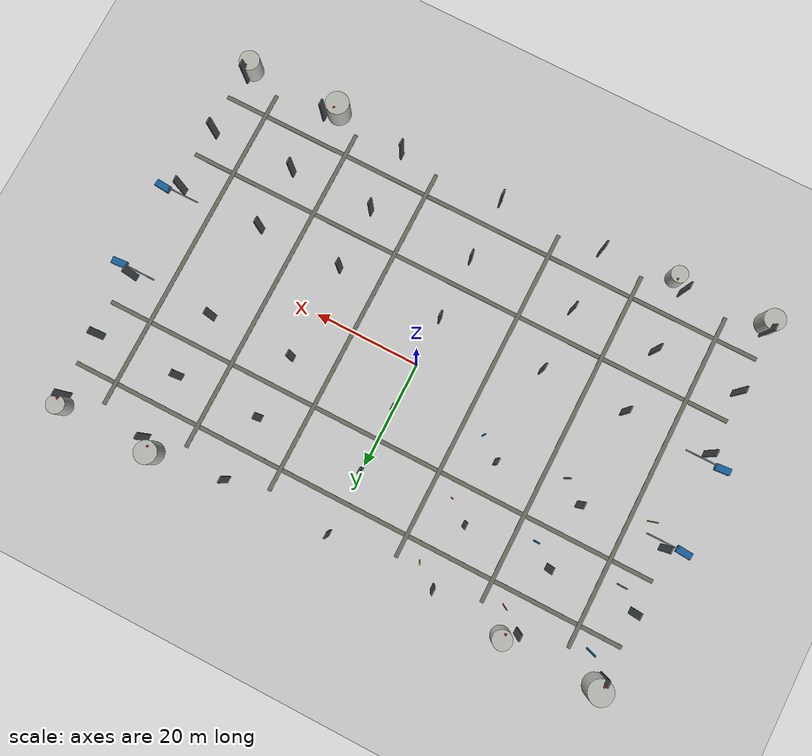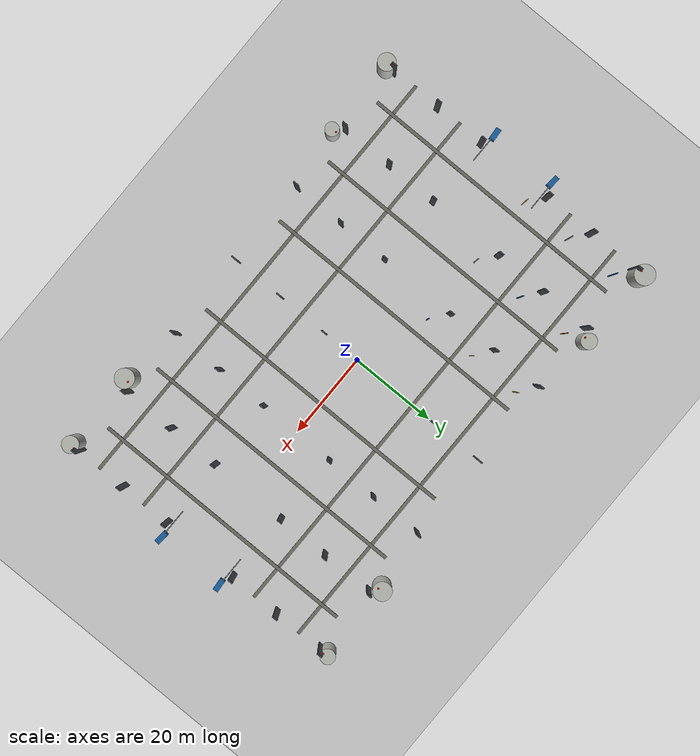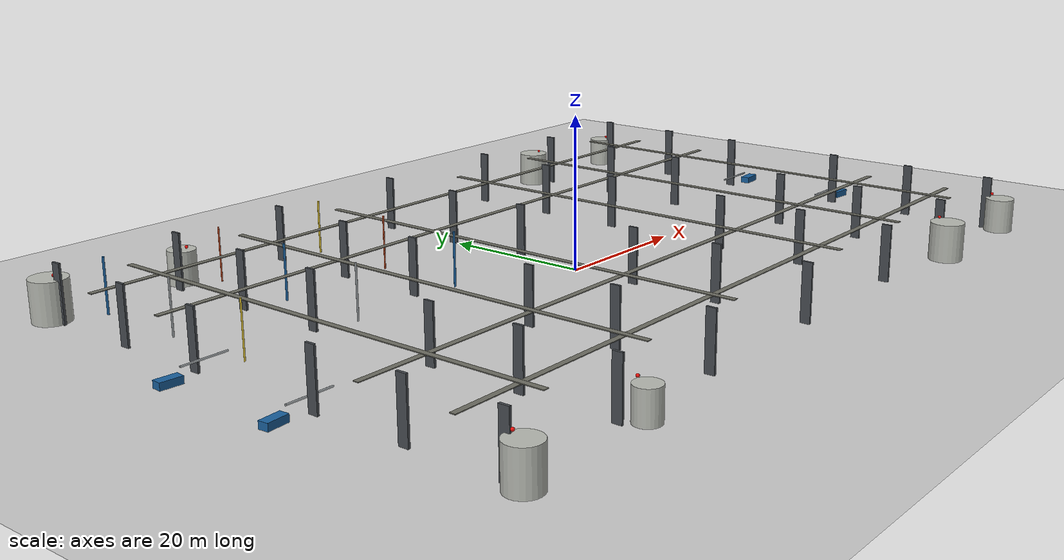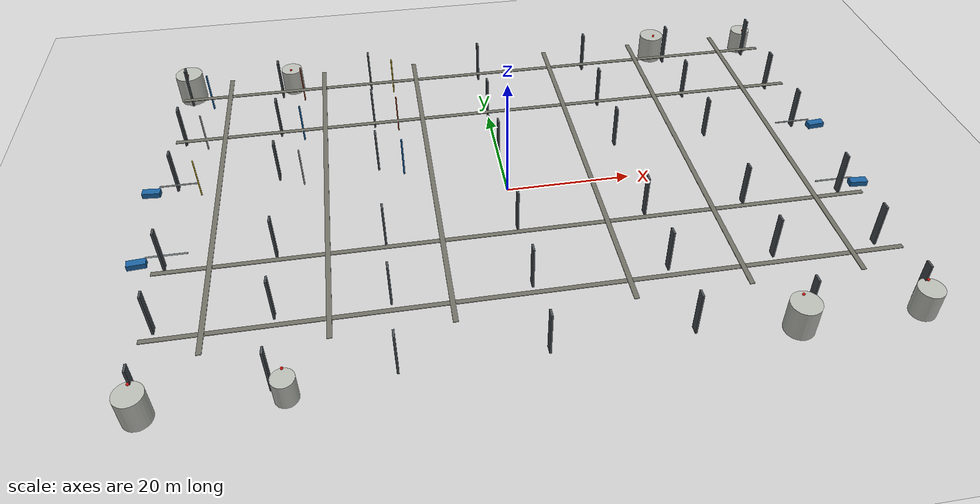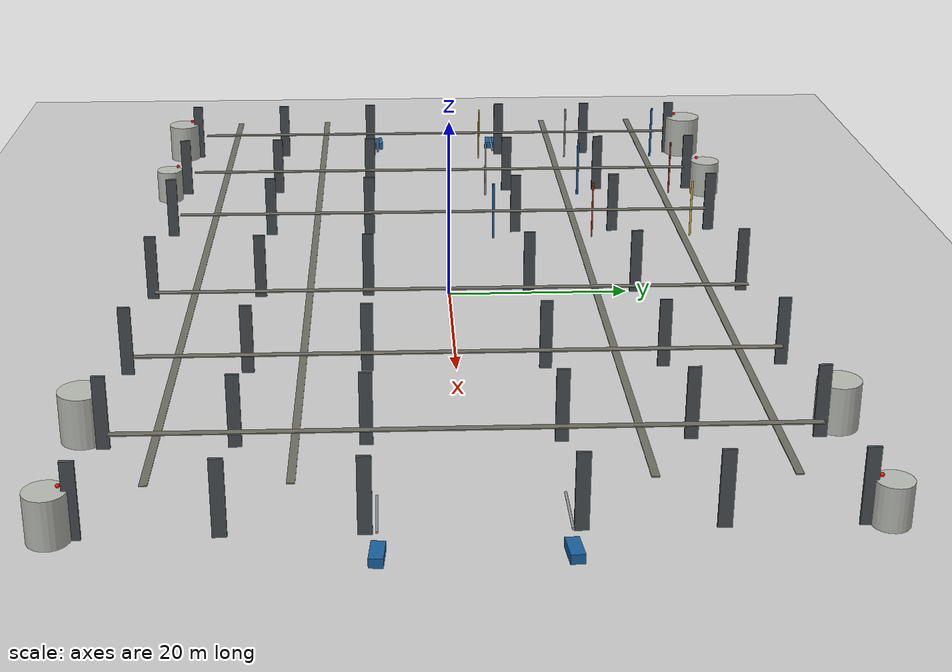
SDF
<sdf version="1.6">
 <world name="default">
  <include><uri>model://sun</uri></include>
  <include><uri>model://ground_plane</uri></include>
  <model name="dense_interwoven_pipe_grid">
   <static>true</static>
   <link name="riser_00_03">
    <pose>-48.0 6.0 4.15 0 0 0</pose>
    <collision name="collision">
     <geometry><cylinder><radius>0.100</radius><length>6.90</length></cylinder></geometry>
    </collision>
    <visual name="visual">
     <geometry><cylinder><radius>0.100</radius><length>6.90</length></cylinder></geometry>
     <material><ambient>0.48 0.42 0.12 1</ambient><diffuse>0.86 0.75 0.20 1</diffuse></material>
    </visual>
   </link>
   <link name="riser_00_04">
    <pose>-48.0 18.0 4.15 0 0 0</pose>
    <collision name="collision">
     <geometry><cylinder><radius>0.120</radius><length>6.90</length></cylinder></geometry>
    </collision>
    <visual name="visual">
     <geometry><cylinder><radius>0.120</radius><length>6.90</length></cylinder></geometry>
     <material><ambient>0.34 0.35 0.36 1</ambient><diffuse>0.58 0.60 0.61 1</diffuse></material>
    </visual>
   </link>
   <link name="riser_00_05">
    <pose>-48.0 30.0 4.15 0 0 0</pose>
    <collision name="collision">
     <geometry><cylinder><radius>0.140</radius><length>6.90</length></cylinder></geometry>
    </collision>
    <visual name="visual">
     <geometry><cylinder><radius>0.140</radius><length>6.90</length></cylinder></geometry>
     <material><ambient>0.05 0.22 0.36 1</ambient><diffuse>0.10 0.38 0.62 1</diffuse></material>
    </visual>
   </link>
   <link name="riser_01_03">
    <pose>-32.0 6.0 4.15 0 0 0</pose>
    <collision name="collision">
     <geometry><cylinder><radius>0.120</radius><length>6.90</length></cylinder></geometry>
    </collision>
    <visual name="visual">
     <geometry><cylinder><radius>0.120</radius><length>6.90</length></cylinder></geometry>
     <material><ambient>0.34 0.35 0.36 1</ambient><diffuse>0.58 0.60 0.61 1</diffuse></material>
    </visual>
   </link>
   <link name="riser_01_04">
    <pose>-32.0 18.0 4.15 0 0 0</pose>
    <collision name="collision">
     <geometry><cylinder><radius>0.140</radius><length>6.90</length></cylinder></geometry>
    </collision>
    <visual name="visual">
     <geometry><cylinder><radius>0.140</radius><length>6.90</length></cylinder></geometry>
     <material><ambient>0.05 0.22 0.36 1</ambient><diffuse>0.10 0.38 0.62 1</diffuse></material>
    </visual>
   </link>
   <link name="riser_01_05">
    <pose>-32.0 30.0 4.15 0 0 0</pose>
    <collision name="collision">
     <geometry><cylinder><radius>0.100</radius><length>6.90</length></cylinder></geometry>
    </collision>
    <visual name="visual">
     <geometry><cylinder><radius>0.100</radius><length>6.90</length></cylinder></geometry>
     <material><ambient>0.45 0.17 0.08 1</ambient><diffuse>0.77 0.30 0.14 1</diffuse></material>
    </visual>
   </link>
   <link name="riser_02_03">
    <pose>-16.0 6.0 4.15 0 0 0</pose>
    <collision name="collision">
     <geometry><cylinder><radius>0.140</radius><length>6.90</length></cylinder></geometry>
    </collision>
    <visual name="visual">
     <geometry><cylinder><radius>0.140</radius><length>6.90</length></cylinder></geometry>
     <material><ambient>0.05 0.22 0.36 1</ambient><diffuse>0.10 0.38 0.62 1</diffuse></material>
    </visual>
   </link>
   <link name="riser_02_04">
    <pose>-16.0 18.0 4.15 0 0 0</pose>
    <collision name="collision">
     <geometry><cylinder><radius>0.100</radius><length>6.90</length></cylinder></geometry>
    </collision>
    <visual name="visual">
     <geometry><cylinder><radius>0.100</radius><length>6.90</length></cylinder></geometry>
     <material><ambient>0.45 0.17 0.08 1</ambient><diffuse>0.77 0.30 0.14 1</diffuse></material>
    </visual>
   </link>
   <link name="riser_02_05">
    <pose>-16.0 30.0 4.15 0 0 0</pose>
    <collision name="collision">
     <geometry><cylinder><radius>0.120</radius><length>6.90</length></cylinder></geometry>
    </collision>
    <visual name="visual">
     <geometry><cylinder><radius>0.120</radius><length>6.90</length></cylinder></geometry>
     <material><ambient>0.48 0.42 0.12 1</ambient><diffuse>0.86 0.75 0.20 1</diffuse></material>
    </visual>
   </link>
  </model>
  <model name="pipe_support_structure">
   <static>true</static>
   <link name="support_m52_m33">
    <pose>-52 -33 3.65 0 0 0</pose>
    <collision name="collision"><geometry><box><size>0.30 1.25 7.30</size></box></geometry></collision>
    <visual name="visual">
     <geometry><box><size>0.30 1.25 7.30</size></box></geometry>
     <material><ambient>0.13 0.14 0.15 1</ambient><diffuse>0.28 0.30 0.32 1</diffuse></material>
    </visual>
   </link>
   <link name="support_m52_m21">
    <pose>-52 -21 3.65 0 0 0</pose>
    <collision name="collision"><geometry><box><size>0.30 1.25 7.30</size></box></geometry></collision>
    <visual name="visual">
     <geometry><box><size>0.30 1.25 7.30</size></box></geometry>
     <material><ambient>0.13 0.14 0.15 1</ambient><diffuse>0.28 0.30 0.32 1</diffuse></material>
    </visual>
   </link>
   <link name="support_m52_m9">
    <pose>-52 -9 3.65 0 0 0</pose>
    <collision name="collision"><geometry><box><size>0.30 1.25 7.30</size></box></geometry></collision>
    <visual name="visual">
     <geometry><box><size>0.30 1.25 7.30</size></box></geometry>
     <material><ambient>0.13 0.14 0.15 1</ambient><diffuse>0.28 0.30 0.32 1</diffuse></material>
    </visual>
   </link>
   <link name="support_m52_p9">
    <pose>-52 9 3.65 0 0 0</pose>
    <collision name="collision"><geometry><box><size>0.30 1.25 7.30</size></box></geometry></collision>
    <visual name="visual">
     <geometry><box><size>0.30 1.25 7.30</size></box></geometry>
     <material><ambient>0.13 0.14 0.15 1</ambient><diffuse>0.28 0.30 0.32 1</diffuse></material>
    </visual>
   </link>
   <link name="support_m52_p21">
    <pose>-52 21 3.65 0 0 0</pose>
    <collision name="collision"><geometry><box><size>0.30 1.25 7.30</size></box></geometry></collision>
    <visual name="visual">
     <geometry><box><size>0.30 1.25 7.30</size></box></geometry>
     <material><ambient>0.13 0.14 0.15 1</ambient><diffuse>0.28 0.30 0.32 1</diffuse></material>
    </visual>
   </link>
   <link name="support_m52_p33">
    <pose>-52 33 3.65 0 0 0</pose>
    <collision name="collision"><geometry><box><size>0.30 1.25 7.30</size></box></geometry></collision>
    <visual name="visual">
     <geometry><box><size>0.30 1.25 7.30</size></box></geometry>
     <material><ambient>0.13 0.14 0.15 1</ambient><diffuse>0.28 0.30 0.32 1</diffuse></material>
    </visual>
   </link>
   <link name="support_m36_m33">
    <pose>-36 -33 3.65 0 0 0</pose>
    <collision name="collision"><geometry><box><size>0.30 1.25 7.30</size></box></geometry></collision>
    <visual name="visual">
     <geometry><box><size>0.30 1.25 7.30</size></box></geometry>
     <material><ambient>0.13 0.14 0.15 1</ambient><diffuse>0.28 0.30 0.32 1</diffuse></material>
    </visual>
   </link>
   <link name="support_m36_m21">
    <pose>-36 -21 3.65 0 0 0</pose>
    <collision name="collision"><geometry><box><size>0.30 1.25 7.30</size></box></geometry></collision>
    <visual name="visual">
     <geometry><box><size>0.30 1.25 7.30</size></box></geometry>
     <material><ambient>0.13 0.14 0.15 1</ambient><diffuse>0.28 0.30 0.32 1</diffuse></material>
    </visual>
   </link>
   <link name="support_m36_m9">
    <pose>-36 -9 3.65 0 0 0</pose>
    <collision name="collision"><geometry><box><size>0.30 1.25 7.30</size></box></geometry></collision>
    <visual name="visual">
     <geometry><box><size>0.30 1.25 7.30</size></box></geometry>
     <material><ambient>0.13 0.14 0.15 1</ambient><diffuse>0.28 0.30 0.32 1</diffuse></material>
    </visual>
   </link>
   <link name="support_m36_p9">
    <pose>-36 9 3.65 0 0 0</pose>
    <collision name="collision"><geometry><box><size>0.30 1.25 7.30</size></box></geometry></collision>
    <visual name="visual">
     <geometry><box><size>0.30 1.25 7.30</size></box></geometry>
     <material><ambient>0.13 0.14 0.15 1</ambient><diffuse>0.28 0.30 0.32 1</diffuse></material>
    </visual>
   </link>
   <link name="support_m36_p21">
    <pose>-36 21 3.65 0 0 0</pose>
    <collision name="collision"><geometry><box><size>0.30 1.25 7.30</size></box></geometry></collision>
    <visual name="visual">
     <geometry><box><size>0.30 1.25 7.30</size></box></geometry>
     <material><ambient>0.13 0.14 0.15 1</ambient><diffuse>0.28 0.30 0.32 1</diffuse></material>
    </visual>
   </link>
   <link name="support_m36_p33">
    <pose>-36 33 3.65 0 0 0</pose>
    <collision name="collision"><geometry><box><size>0.30 1.25 7.30</size></box></geometry></collision>
    <visual name="visual">
     <geometry><box><size>0.30 1.25 7.30</size></box></geometry>
     <material><ambient>0.13 0.14 0.15 1</ambient><diffuse>0.28 0.30 0.32 1</diffuse></material>
    </visual>
   </link>
   <link name="support_m20_m33">
    <pose>-20 -33 3.65 0 0 0</pose>
    <collision name="collision"><geometry><box><size>0.30 1.25 7.30</size></box></geometry></collision>
    <visual name="visual">
     <geometry><box><size>0.30 1.25 7.30</size></box></geometry>
     <material><ambient>0.13 0.14 0.15 1</ambient><diffuse>0.28 0.30 0.32 1</diffuse></material>
    </visual>
   </link>
   <link name="support_m20_m21">
    <pose>-20 -21 3.65 0 0 0</pose>
    <collision name="collision"><geometry><box><size>0.30 1.25 7.30</size></box></geometry></collision>
    <visual name="visual">
     <geometry><box><size>0.30 1.25 7.30</size></box></geometry>
     <material><ambient>0.13 0.14 0.15 1</ambient><diffuse>0.28 0.30 0.32 1</diffuse></material>
    </visual>
   </link>
   <link name="support_m20_m9">
    <pose>-20 -9 3.65 0 0 0</pose>
    <collision name="collision"><geometry><box><size>0.30 1.25 7.30</size></box></geometry></collision>
    <visual name="visual">
     <geometry><box><size>0.30 1.25 7.30</size></box></geometry>
     <material><ambient>0.13 0.14 0.15 1</ambient><diffuse>0.28 0.30 0.32 1</diffuse></material>
    </visual>
   </link>
   <link name="support_m20_p9">
    <pose>-20 9 3.65 0 0 0</pose>
    <collision name="collision"><geometry><box><size>0.30 1.25 7.30</size></box></geometry></collision>
    <visual name="visual">
     <geometry><box><size>0.30 1.25 7.30</size></box></geometry>
     <material><ambient>0.13 0.14 0.15 1</ambient><diffuse>0.28 0.30 0.32 1</diffuse></material>
    </visual>
   </link>
   <link name="support_m20_p21">
    <pose>-20 21 3.65 0 0 0</pose>
    <collision name="collision"><geometry><box><size>0.30 1.25 7.30</size></box></geometry></collision>
    <visual name="visual">
     <geometry><box><size>0.30 1.25 7.30</size></box></geometry>
     <material><ambient>0.13 0.14 0.15 1</ambient><diffuse>0.28 0.30 0.32 1</diffuse></material>
    </visual>
   </link>
   <link name="support_m20_p33">
    <pose>-20 33 3.65 0 0 0</pose>
    <collision name="collision"><geometry><box><size>0.30 1.25 7.30</size></box></geometry></collision>
    <visual name="visual">
     <geometry><box><size>0.30 1.25 7.30</size></box></geometry>
     <material><ambient>0.13 0.14 0.15 1</ambient><diffuse>0.28 0.30 0.32 1</diffuse></material>
    </visual>
   </link>
   <link name="support_p0_m33">
    <pose>0 -33 3.65 0 0 0</pose>
    <collision name="collision"><geometry><box><size>0.30 1.25 7.30</size></box></geometry></collision>
    <visual name="visual">
     <geometry><box><size>0.30 1.25 7.30</size></box></geometry>
     <material><ambient>0.13 0.14 0.15 1</ambient><diffuse>0.28 0.30 0.32 1</diffuse></material>
    </visual>
   </link>
   <link name="support_p0_m21">
    <pose>0 -21 3.65 0 0 0</pose>
    <collision name="collision"><geometry><box><size>0.30 1.25 7.30</size></box></geometry></collision>
    <visual name="visual">
     <geometry><box><size>0.30 1.25 7.30</size></box></geometry>
     <material><ambient>0.13 0.14 0.15 1</ambient><diffuse>0.28 0.30 0.32 1</diffuse></material>
    </visual>
   </link>
   <link name="support_p0_m9">
    <pose>0 -9 3.65 0 0 0</pose>
    <collision name="collision"><geometry><box><size>0.30 1.25 7.30</size></box></geometry></collision>
    <visual name="visual">
     <geometry><box><size>0.30 1.25 7.30</size></box></geometry>
     <material><ambient>0.13 0.14 0.15 1</ambient><diffuse>0.28 0.30 0.32 1</diffuse></material>
    </visual>
   </link>
   <link name="support_p0_p9">
    <pose>0 9 3.65 0 0 0</pose>
    <collision name="collision"><geometry><box><size>0.30 1.25 7.30</size></box></geometry></collision>
    <visual name="visual">
     <geometry><box><size>0.30 1.25 7.30</size></box></geometry>
     <material><ambient>0.13 0.14 0.15 1</ambient><diffuse>0.28 0.30 0.32 1</diffuse></material>
    </visual>
   </link>
   <link name="support_p0_p21">
    <pose>0 21 3.65 0 0 0</pose>
    <collision name="collision"><geometry><box><size>0.30 1.25 7.30</size></box></geometry></collision>
    <visual name="visual">
     <geometry><box><size>0.30 1.25 7.30</size></box></geometry>
     <material><ambient>0.13 0.14 0.15 1</ambient><diffuse>0.28 0.30 0.32 1</diffuse></material>
    </visual>
   </link>
   <link name="support_p0_p33">
    <pose>0 33 3.65 0 0 0</pose>
    <collision name="collision"><geometry><box><size>0.30 1.25 7.30</size></box></geometry></collision>
    <visual name="visual">
     <geometry><box><size>0.30 1.25 7.30</size></box></geometry>
     <material><ambient>0.13 0.14 0.15 1</ambient><diffuse>0.28 0.30 0.32 1</diffuse></material>
    </visual>
   </link>
   <link name="support_p20_m33">
    <pose>20 -33 3.65 0 0 0</pose>
    <collision name="collision"><geometry><box><size>0.30 1.25 7.30</size></box></geometry></collision>
    <visual name="visual">
     <geometry><box><size>0.30 1.25 7.30</size></box></geometry>
     <material><ambient>0.13 0.14 0.15 1</ambient><diffuse>0.28 0.30 0.32 1</diffuse></material>
    </visual>
   </link>
   <link name="support_p20_m21">
    <pose>20 -21 3.65 0 0 0</pose>
    <collision name="collision"><geometry><box><size>0.30 1.25 7.30</size></box></geometry></collision>
    <visual name="visual">
     <geometry><box><size>0.30 1.25 7.30</size></box></geometry>
     <material><ambient>0.13 0.14 0.15 1</ambient><diffuse>0.28 0.30 0.32 1</diffuse></material>
    </visual>
   </link>
   <link name="support_p20_m9">
    <pose>20 -9 3.65 0 0 0</pose>
    <collision name="collision"><geometry><box><size>0.30 1.25 7.30</size></box></geometry></collision>
    <visual name="visual">
     <geometry><box><size>0.30 1.25 7.30</size></box></geometry>
     <material><ambient>0.13 0.14 0.15 1</ambient><diffuse>0.28 0.30 0.32 1</diffuse></material>
    </visual>
   </link>
   <link name="support_p20_p9">
    <pose>20 9 3.65 0 0 0</pose>
    <collision name="collision"><geometry><box><size>0.30 1.25 7.30</size></box></geometry></collision>
    <visual name="visual">
     <geometry><box><size>0.30 1.25 7.30</size></box></geometry>
     <material><ambient>0.13 0.14 0.15 1</ambient><diffuse>0.28 0.30 0.32 1</diffuse></material>
    </visual>
   </link>
   <link name="support_p20_p21">
    <pose>20 21 3.65 0 0 0</pose>
    <collision name="collision"><geometry><box><size>0.30 1.25 7.30</size></box></geometry></collision>
    <visual name="visual">
     <geometry><box><size>0.30 1.25 7.30</size></box></geometry>
     <material><ambient>0.13 0.14 0.15 1</ambient><diffuse>0.28 0.30 0.32 1</diffuse></material>
    </visual>
   </link>
   <link name="support_p20_p33">
    <pose>20 33 3.65 0 0 0</pose>
    <collision name="collision"><geometry><box><size>0.30 1.25 7.30</size></box></geometry></collision>
    <visual name="visual">
     <geometry><box><size>0.30 1.25 7.30</size></box></geometry>
     <material><ambient>0.13 0.14 0.15 1</ambient><diffuse>0.28 0.30 0.32 1</diffuse></material>
    </visual>
   </link>
   <link name="support_p36_m33">
    <pose>36 -33 3.65 0 0 0</pose>
    <collision name="collision"><geometry><box><size>0.30 1.25 7.30</size></box></geometry></collision>
    <visual name="visual">
     <geometry><box><size>0.30 1.25 7.30</size></box></geometry>
     <material><ambient>0.13 0.14 0.15 1</ambient><diffuse>0.28 0.30 0.32 1</diffuse></material>
    </visual>
   </link>
   <link name="support_p36_m21">
    <pose>36 -21 3.65 0 0 0</pose>
    <collision name="collision"><geometry><box><size>0.30 1.25 7.30</size></box></geometry></collision>
    <visual name="visual">
     <geometry><box><size>0.30 1.25 7.30</size></box></geometry>
     <material><ambient>0.13 0.14 0.15 1</ambient><diffuse>0.28 0.30 0.32 1</diffuse></material>
    </visual>
   </link>
   <link name="support_p36_m9">
    <pose>36 -9 3.65 0 0 0</pose>
    <collision name="collision"><geometry><box><size>0.30 1.25 7.30</size></box></geometry></collision>
    <visual name="visual">
     <geometry><box><size>0.30 1.25 7.30</size></box></geometry>
     <material><ambient>0.13 0.14 0.15 1</ambient><diffuse>0.28 0.30 0.32 1</diffuse></material>
    </visual>
   </link>
   <link name="support_p36_p9">
    <pose>36 9 3.65 0 0 0</pose>
    <collision name="collision"><geometry><box><size>0.30 1.25 7.30</size></box></geometry></collision>
    <visual name="visual">
     <geometry><box><size>0.30 1.25 7.30</size></box></geometry>
     <material><ambient>0.13 0.14 0.15 1</ambient><diffuse>0.28 0.30 0.32 1</diffuse></material>
    </visual>
   </link>
   <link name="support_p36_p21">
    <pose>36 21 3.65 0 0 0</pose>
    <collision name="collision"><geometry><box><size>0.30 1.25 7.30</size></box></geometry></collision>
    <visual name="visual">
     <geometry><box><size>0.30 1.25 7.30</size></box></geometry>
     <material><ambient>0.13 0.14 0.15 1</ambient><diffuse>0.28 0.30 0.32 1</diffuse></material>
    </visual>
   </link>
   <link name="support_p36_p33">
    <pose>36 33 3.65 0 0 0</pose>
    <collision name="collision"><geometry><box><size>0.30 1.25 7.30</size></box></geometry></collision>
    <visual name="visual">
     <geometry><box><size>0.30 1.25 7.30</size></box></geometry>
     <material><ambient>0.13 0.14 0.15 1</ambient><diffuse>0.28 0.30 0.32 1</diffuse></material>
    </visual>
   </link>
   <link name="support_p52_m33">
    <pose>52 -33 3.65 0 0 0</pose>
    <collision name="collision"><geometry><box><size>0.30 1.25 7.30</size></box></geometry></collision>
    <visual name="visual">
     <geometry><box><size>0.30 1.25 7.30</size></box></geometry>
     <material><ambient>0.13 0.14 0.15 1</ambient><diffuse>0.28 0.30 0.32 1</diffuse></material>
    </visual>
   </link>
   <link name="support_p52_m21">
    <pose>52 -21 3.65 0 0 0</pose>
    <collision name="collision"><geometry><box><size>0.30 1.25 7.30</size></box></geometry></collision>
    <visual name="visual">
     <geometry><box><size>0.30 1.25 7.30</size></box></geometry>
     <material><ambient>0.13 0.14 0.15 1</ambient><diffuse>0.28 0.30 0.32 1</diffuse></material>
    </visual>
   </link>
   <link name="support_p52_m9">
    <pose>52 -9 3.65 0 0 0</pose>
    <collision name="collision"><geometry><box><size>0.30 1.25 7.30</size></box></geometry></collision>
    <visual name="visual">
     <geometry><box><size>0.30 1.25 7.30</size></box></geometry>
     <material><ambient>0.13 0.14 0.15 1</ambient><diffuse>0.28 0.30 0.32 1</diffuse></material>
    </visual>
   </link>
   <link name="support_p52_p9">
    <pose>52 9 3.65 0 0 0</pose>
    <collision name="collision"><geometry><box><size>0.30 1.25 7.30</size></box></geometry></collision>
    <visual name="visual">
     <geometry><box><size>0.30 1.25 7.30</size></box></geometry>
     <material><ambient>0.13 0.14 0.15 1</ambient><diffuse>0.28 0.30 0.32 1</diffuse></material>
    </visual>
   </link>
   <link name="support_p52_p21">
    <pose>52 21 3.65 0 0 0</pose>
    <collision name="collision"><geometry><box><size>0.30 1.25 7.30</size></box></geometry></collision>
    <visual name="visual">
     <geometry><box><size>0.30 1.25 7.30</size></box></geometry>
     <material><ambient>0.13 0.14 0.15 1</ambient><diffuse>0.28 0.30 0.32 1</diffuse></material>
    </visual>
   </link>
   <link name="support_p52_p33">
    <pose>52 33 3.65 0 0 0</pose>
    <collision name="collision"><geometry><box><size>0.30 1.25 7.30</size></box></geometry></collision>
    <visual name="visual">
     <geometry><box><size>0.30 1.25 7.30</size></box></geometry>
     <material><ambient>0.13 0.14 0.15 1</ambient><diffuse>0.28 0.30 0.32 1</diffuse></material>
    </visual>
   </link>
   <link name="catwalk_x_m27">
    <pose>0 -27 4.85 0 0 0</pose>
    <collision name="collision"><geometry><box><size>104 0.72 0.10</size></box></geometry></collision>
    <visual name="visual">
     <geometry><box><size>104 0.72 0.10</size></box></geometry>
     <material><ambient>0.24 0.24 0.22 1</ambient><diffuse>0.43 0.43 0.39 1</diffuse></material>
    </visual>
   </link>
   <link name="catwalk_x_m15">
    <pose>0 -15 4.85 0 0 0</pose>
    <collision name="collision"><geometry><box><size>104 0.72 0.10</size></box></geometry></collision>
    <visual name="visual">
     <geometry><box><size>104 0.72 0.10</size></box></geometry>
     <material><ambient>0.24 0.24 0.22 1</ambient><diffuse>0.43 0.43 0.39 1</diffuse></material>
    </visual>
   </link>
   <link name="catwalk_x_p15">
    <pose>0 15 4.85 0 0 0</pose>
    <collision name="collision"><geometry><box><size>104 0.72 0.10</size></box></geometry></collision>
    <visual name="visual">
     <geometry><box><size>104 0.72 0.10</size></box></geometry>
     <material><ambient>0.24 0.24 0.22 1</ambient><diffuse>0.43 0.43 0.39 1</diffuse></material>
    </visual>
   </link>
   <link name="catwalk_x_p27">
    <pose>0 27 4.85 0 0 0</pose>
    <collision name="collision"><geometry><box><size>104 0.72 0.10</size></box></geometry></collision>
    <visual name="visual">
     <geometry><box><size>104 0.72 0.10</size></box></geometry>
     <material><ambient>0.24 0.24 0.22 1</ambient><diffuse>0.43 0.43 0.39 1</diffuse></material>
    </visual>
   </link>
   <link name="catwalk_y_m44">
    <pose>-44 0 5.55 0 0 0</pose>
    <collision name="collision"><geometry><box><size>0.72 62 0.10</size></box></geometry></collision>
    <visual name="visual">
     <geometry><box><size>0.72 62 0.10</size></box></geometry>
     <material><ambient>0.24 0.24 0.22 1</ambient><diffuse>0.43 0.43 0.39 1</diffuse></material>
    </visual>
   </link>
   <link name="catwalk_y_m28">
    <pose>-28 0 5.55 0 0 0</pose>
    <collision name="collision"><geometry><box><size>0.72 62 0.10</size></box></geometry></collision>
    <visual name="visual">
     <geometry><box><size>0.72 62 0.10</size></box></geometry>
     <material><ambient>0.24 0.24 0.22 1</ambient><diffuse>0.43 0.43 0.39 1</diffuse></material>
    </visual>
   </link>
   <link name="catwalk_y_m12">
    <pose>-12 0 5.55 0 0 0</pose>
    <collision name="collision"><geometry><box><size>0.72 62 0.10</size></box></geometry></collision>
    <visual name="visual">
     <geometry><box><size>0.72 62 0.10</size></box></geometry>
     <material><ambient>0.24 0.24 0.22 1</ambient><diffuse>0.43 0.43 0.39 1</diffuse></material>
    </visual>
   </link>
   <link name="catwalk_y_p12">
    <pose>12 0 5.55 0 0 0</pose>
    <collision name="collision"><geometry><box><size>0.72 62 0.10</size></box></geometry></collision>
    <visual name="visual">
     <geometry><box><size>0.72 62 0.10</size></box></geometry>
     <material><ambient>0.24 0.24 0.22 1</ambient><diffuse>0.43 0.43 0.39 1</diffuse></material>
    </visual>
   </link>
   <link name="catwalk_y_p28">
    <pose>28 0 5.55 0 0 0</pose>
    <collision name="collision"><geometry><box><size>0.72 62 0.10</size></box></geometry></collision>
    <visual name="visual">
     <geometry><box><size>0.72 62 0.10</size></box></geometry>
     <material><ambient>0.24 0.24 0.22 1</ambient><diffuse>0.43 0.43 0.39 1</diffuse></material>
    </visual>
   </link>
   <link name="catwalk_y_p44">
    <pose>44 0 5.55 0 0 0</pose>
    <collision name="collision"><geometry><box><size>0.72 62 0.10</size></box></geometry></collision>
    <visual name="visual">
     <geometry><box><size>0.72 62 0.10</size></box></geometry>
     <material><ambient>0.24 0.24 0.22 1</ambient><diffuse>0.43 0.43 0.39 1</diffuse></material>
    </visual>
   </link>
  </model>
  <model name="process_tanks_and_equipment">
   <static>true</static>
   <link name="tank_0">
    <pose>-52 35 2.60 0 0 0</pose>
    <collision name="collision">
     <geometry><cylinder><radius>2.300</radius><length>5.20</length></cylinder></geometry>
    </collision>
    <visual name="visual">
     <geometry><cylinder><radius>2.300</radius><length>5.20</length></cylinder></geometry>
     <material><ambient>0.44 0.45 0.43 1</ambient><diffuse>0.72 0.73 0.70 1</diffuse></material>
    </visual>
   </link>
   <link name="inspection_marker_0">
    <pose>-52 33.85 5.65 0 0 0</pose>
    <visual name="visual">
     <geometry><sphere><radius>0.200</radius></sphere></geometry>
     <material><ambient>0.72 0.05 0.04 1</ambient><diffuse>0.95 0.08 0.06 1</diffuse></material>
    </visual>
   </link>
   <link name="tank_1">
    <pose>-34 35 2.20 0 0 0</pose>
    <collision name="collision">
     <geometry><cylinder><radius>1.800</radius><length>4.40</length></cylinder></geometry>
    </collision>
    <visual name="visual">
     <geometry><cylinder><radius>1.800</radius><length>4.40</length></cylinder></geometry>
     <material><ambient>0.44 0.45 0.43 1</ambient><diffuse>0.72 0.73 0.70 1</diffuse></material>
    </visual>
   </link>
   <link name="inspection_marker_1">
    <pose>-34 33.85 4.85 0 0 0</pose>
    <visual name="visual">
     <geometry><sphere><radius>0.200</radius></sphere></geometry>
     <material><ambient>0.72 0.05 0.04 1</ambient><diffuse>0.95 0.08 0.06 1</diffuse></material>
    </visual>
   </link>
   <link name="tank_2">
    <pose>34 35 2.40 0 0 0</pose>
    <collision name="collision">
     <geometry><cylinder><radius>2.100</radius><length>4.80</length></cylinder></geometry>
    </collision>
    <visual name="visual">
     <geometry><cylinder><radius>2.100</radius><length>4.80</length></cylinder></geometry>
     <material><ambient>0.44 0.45 0.43 1</ambient><diffuse>0.72 0.73 0.70 1</diffuse></material>
    </visual>
   </link>
   <link name="inspection_marker_2">
    <pose>34 33.85 5.25 0 0 0</pose>
    <visual name="visual">
     <geometry><sphere><radius>0.200</radius></sphere></geometry>
     <material><ambient>0.72 0.05 0.04 1</ambient><diffuse>0.95 0.08 0.06 1</diffuse></material>
    </visual>
   </link>
   <link name="tank_3">
    <pose>52 35 2.10 0 0 0</pose>
    <collision name="collision">
     <geometry><cylinder><radius>1.700</radius><length>4.20</length></cylinder></geometry>
    </collision>
    <visual name="visual">
     <geometry><cylinder><radius>1.700</radius><length>4.20</length></cylinder></geometry>
     <material><ambient>0.44 0.45 0.43 1</ambient><diffuse>0.72 0.73 0.70 1</diffuse></material>
    </visual>
   </link>
   <link name="inspection_marker_3">
    <pose>52 33.85 4.65 0 0 0</pose>
    <visual name="visual">
     <geometry><sphere><radius>0.200</radius></sphere></geometry>
     <material><ambient>0.72 0.05 0.04 1</ambient><diffuse>0.95 0.08 0.06 1</diffuse></material>
    </visual>
   </link>
   <link name="tank_4">
    <pose>-52 -35 2.40 0 0 0</pose>
    <collision name="collision">
     <geometry><cylinder><radius>2.000</radius><length>4.80</length></cylinder></geometry>
    </collision>
    <visual name="visual">
     <geometry><cylinder><radius>2.000</radius><length>4.80</length></cylinder></geometry>
     <material><ambient>0.44 0.45 0.43 1</ambient><diffuse>0.72 0.73 0.70 1</diffuse></material>
    </visual>
   </link>
   <link name="inspection_marker_4">
    <pose>-52 -33.85 5.25 0 0 0</pose>
    <visual name="visual">
     <geometry><sphere><radius>0.200</radius></sphere></geometry>
     <material><ambient>0.72 0.05 0.04 1</ambient><diffuse>0.95 0.08 0.06 1</diffuse></material>
    </visual>
   </link>
   <link name="tank_5">
    <pose>-34 -35 2.00 0 0 0</pose>
    <collision name="collision">
     <geometry><cylinder><radius>1.600</radius><length>4.00</length></cylinder></geometry>
    </collision>
    <visual name="visual">
     <geometry><cylinder><radius>1.600</radius><length>4.00</length></cylinder></geometry>
     <material><ambient>0.44 0.45 0.43 1</ambient><diffuse>0.72 0.73 0.70 1</diffuse></material>
    </visual>
   </link>
   <link name="inspection_marker_5">
    <pose>-34 -33.85 4.45 0 0 0</pose>
    <visual name="visual">
     <geometry><sphere><radius>0.200</radius></sphere></geometry>
     <material><ambient>0.72 0.05 0.04 1</ambient><diffuse>0.95 0.08 0.06 1</diffuse></material>
    </visual>
   </link>
   <link name="tank_6">
    <pose>34 -35 2.50 0 0 0</pose>
    <collision name="collision">
     <geometry><cylinder><radius>2.200</radius><length>5.00</length></cylinder></geometry>
    </collision>
    <visual name="visual">
     <geometry><cylinder><radius>2.200</radius><length>5.00</length></cylinder></geometry>
     <material><ambient>0.44 0.45 0.43 1</ambient><diffuse>0.72 0.73 0.70 1</diffuse></material>
    </visual>
   </link>
   <link name="inspection_marker_6">
    <pose>34 -33.85 5.45 0 0 0</pose>
    <visual name="visual">
     <geometry><sphere><radius>0.200</radius></sphere></geometry>
     <material><ambient>0.72 0.05 0.04 1</ambient><diffuse>0.95 0.08 0.06 1</diffuse></material>
    </visual>
   </link>
   <link name="tank_7">
    <pose>52 -35 2.30 0 0 0</pose>
    <collision name="collision">
     <geometry><cylinder><radius>1.900</radius><length>4.60</length></cylinder></geometry>
    </collision>
    <visual name="visual">
     <geometry><cylinder><radius>1.900</radius><length>4.60</length></cylinder></geometry>
     <material><ambient>0.44 0.45 0.43 1</ambient><diffuse>0.72 0.73 0.70 1</diffuse></material>
    </visual>
   </link>
   <link name="inspection_marker_7">
    <pose>52 -33.85 5.05 0 0 0</pose>
    <visual name="visual">
     <geometry><sphere><radius>0.200</radius></sphere></geometry>
     <material><ambient>0.72 0.05 0.04 1</ambient><diffuse>0.95 0.08 0.06 1</diffuse></material>
    </visual>
   </link>
   <link name="pump_skid_0">
    <pose>-56 -8 0.45 0 0 0.08</pose>
    <collision name="collision"><geometry><box><size>2.8 1.25 0.9</size></box></geometry></collision>
    <visual name="visual">
     <geometry><box><size>2.8 1.25 0.9</size></box></geometry>
     <material><ambient>0.05 0.22 0.36 1</ambient><diffuse>0.10 0.38 0.62 1</diffuse></material>
    </visual>
   </link>
   <link name="pump_discharge_0">
    <pose>-51.52 -8 1.6 0 1.5708 0</pose>
    <collision name="collision">
     <geometry><cylinder><radius>0.120</radius><length>6.00</length></cylinder></geometry>
    </collision>
    <visual name="visual">
     <geometry><cylinder><radius>0.120</radius><length>6.00</length></cylinder></geometry>
     <material><ambient>0.34 0.35 0.36 1</ambient><diffuse>0.58 0.60 0.61 1</diffuse></material>
    </visual>
   </link>
   <link name="pump_skid_1">
    <pose>-56 8 0.45 0 0 -0.08</pose>
    <collision name="collision"><geometry><box><size>2.8 1.25 0.9</size></box></geometry></collision>
    <visual name="visual">
     <geometry><box><size>2.8 1.25 0.9</size></box></geometry>
     <material><ambient>0.05 0.22 0.36 1</ambient><diffuse>0.10 0.38 0.62 1</diffuse></material>
    </visual>
   </link>
   <link name="pump_discharge_1">
    <pose>-51.52 8 1.6 0 1.5708 0</pose>
    <collision name="collision">
     <geometry><cylinder><radius>0.120</radius><length>6.00</length></cylinder></geometry>
    </collision>
    <visual name="visual">
     <geometry><cylinder><radius>0.120</radius><length>6.00</length></cylinder></geometry>
     <material><ambient>0.34 0.35 0.36 1</ambient><diffuse>0.58 0.60 0.61 1</diffuse></material>
    </visual>
   </link>
   <link name="pump_skid_2">
    <pose>56 -8 0.45 0 0 -0.08</pose>
    <collision name="collision"><geometry><box><size>2.8 1.25 0.9</size></box></geometry></collision>
    <visual name="visual">
     <geometry><box><size>2.8 1.25 0.9</size></box></geometry>
     <material><ambient>0.05 0.22 0.36 1</ambient><diffuse>0.10 0.38 0.62 1</diffuse></material>
    </visual>
   </link>
   <link name="pump_discharge_2">
    <pose>51.52 -8 1.6 0 1.5708 0</pose>
    <collision name="collision">
     <geometry><cylinder><radius>0.120</radius><length>6.00</length></cylinder></geometry>
    </collision>
    <visual name="visual">
     <geometry><cylinder><radius>0.120</radius><length>6.00</length></cylinder></geometry>
     <material><ambient>0.34 0.35 0.36 1</ambient><diffuse>0.58 0.60 0.61 1</diffuse></material>
    </visual>
   </link>
   <link name="pump_skid_3">
    <pose>56 8 0.45 0 0 0.08</pose>
    <collision name="collision"><geometry><box><size>2.8 1.25 0.9</size></box></geometry></collision>
    <visual name="visual">
     <geometry><box><size>2.8 1.25 0.9</size></box></geometry>
     <material><ambient>0.05 0.22 0.36 1</ambient><diffuse>0.10 0.38 0.62 1</diffuse></material>
    </visual>
   </link>
   <link name="pump_discharge_3">
    <pose>51.52 8 1.6 0 1.5708 0</pose>
    <collision name="collision">
     <geometry><cylinder><radius>0.120</radius><length>6.00</length></cylinder></geometry>
    </collision>
    <visual name="visual">
     <geometry><cylinder><radius>0.120</radius><length>6.00</length></cylinder></geometry>
     <material><ambient>0.34 0.35 0.36 1</ambient><diffuse>0.58 0.60 0.61 1</diffuse></material>
    </visual>
   </link>
  </model>
 </world>
</sdf>
